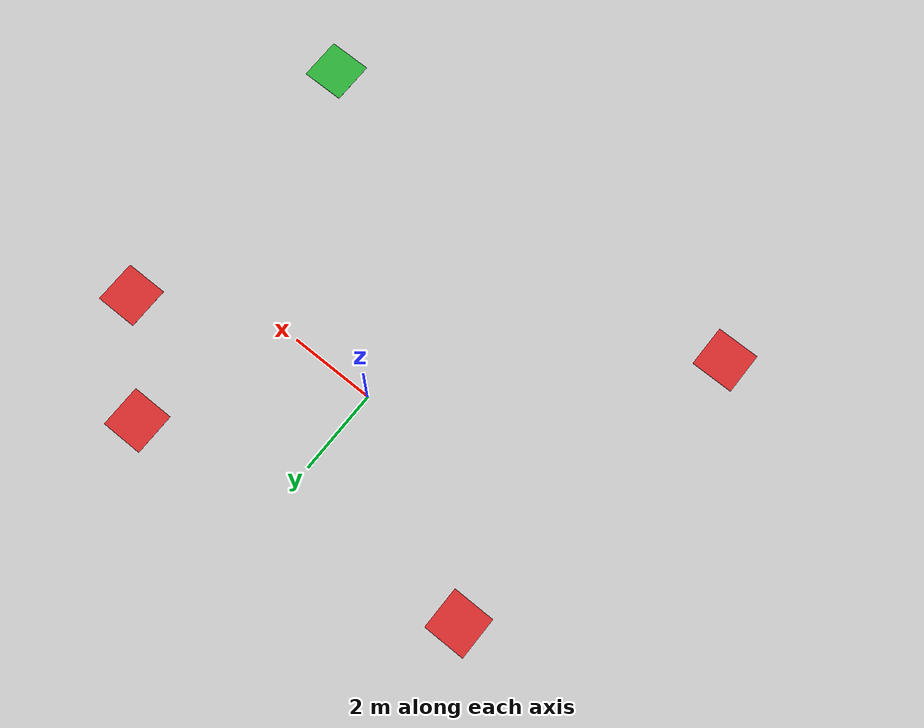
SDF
<?xml version='1.0'?>
<sdf version='1.6'>
  <model name='maze_base'>
    <static>true</static>
    <link name='hole_1'>
      <pose frame=''>5.5 1.5 0 0 0 0</pose>
      <self_collide>0</self_collide>
      <kinematic>0</kinematic>
      <visual name='visual'>
        <pose frame=''>0 0 0.003 0 0 0</pose>
        <geometry>
          <box>
            <size>1 1 0.005</size>
          </box>
        </geometry>
        <material>
          <script>
            <uri>file://media/materials/scripts/gazebo.material</uri>
            <name>Gazebo/Red</name>
          </script>
        </material>
      </visual>
    </link>
    <link name='hole_2'>
      <pose frame=''>3.5 3.5 0 0 0 0</pose>
      <self_collide>0</self_collide>
      <kinematic>0</kinematic>
      <visual name='visual'>
        <pose frame=''>0 0 0.003 0 0 0</pose>
        <geometry>
          <box>
            <size>1 1 0.005</size>
          </box>
        </geometry>
        <material>
          <script>
            <uri>file://media/materials/scripts/gazebo.material</uri>
            <name>Gazebo/Red</name>
          </script>
        </material>
      </visual>
    </link>
    <link name='hole_3'>
      <pose frame=''>-4.5 2.5 0 0 0 0</pose>
      <self_collide>0</self_collide>
      <kinematic>0</kinematic>
      <visual name='visual'>
        <pose frame=''>0 0 0.003 0 0 0</pose>
        <geometry>
          <box>
            <size>1 1 0.005</size>
          </box>
        </geometry>
        <material>
          <script>
            <uri>file://media/materials/scripts/gazebo.material</uri>
            <name>Gazebo/Red</name>
          </script>
        </material>
      </visual>
    </link>
    <link name='hole_4'>
      <pose frame=''>-5.5 -5.5 0 0 0 0</pose>
      <self_collide>0</self_collide>
      <kinematic>0</kinematic>
      <visual name='visual'>
        <pose frame=''>0 0 0.003 0 0 0</pose>
        <geometry>
          <box>
            <size>1 1 0.005</size>
          </box>
        </geometry>
        <material>
          <script>
            <uri>file://media/materials/scripts/gazebo.material</uri>
            <name>Gazebo/Red</name>
          </script>
        </material>
      </visual>
    </link>
    <link name='destination'>
      <pose frame=''>5.5 -5.5 0 0 0 0</pose>
      <self_collide>0</self_collide>
      <kinematic>0</kinematic>
      <visual name='visual'>
        <pose frame=''>0 0 0.003 0 0 0</pose>
        <geometry>
          <box>
            <size>1 1 0.005</size>
          </box>
        </geometry>
        <material>
          <script>
            <uri>file://media/materials/scripts/gazebo.material</uri>
            <name>Gazebo/Green</name>
          </script>
        </material>
      </visual>
    </link>
  </model>
</sdf>
